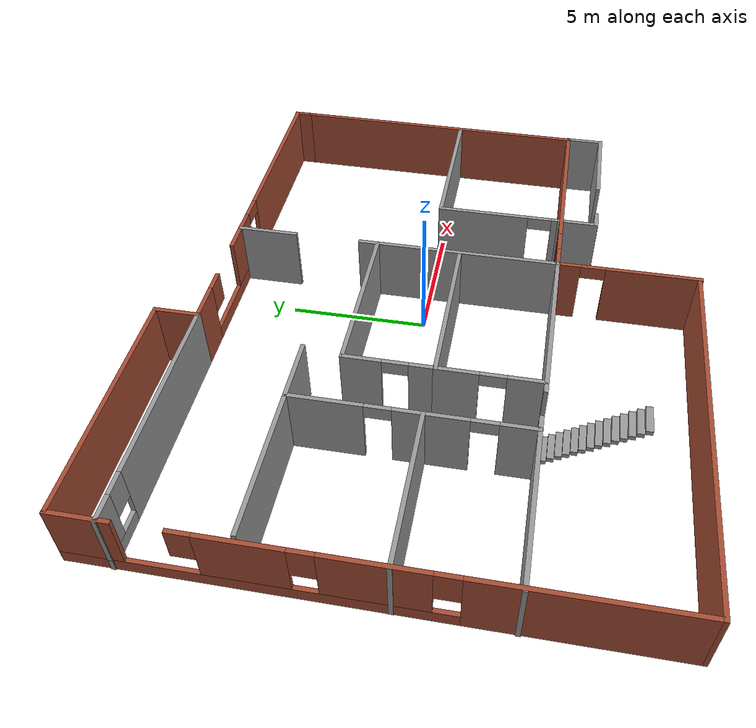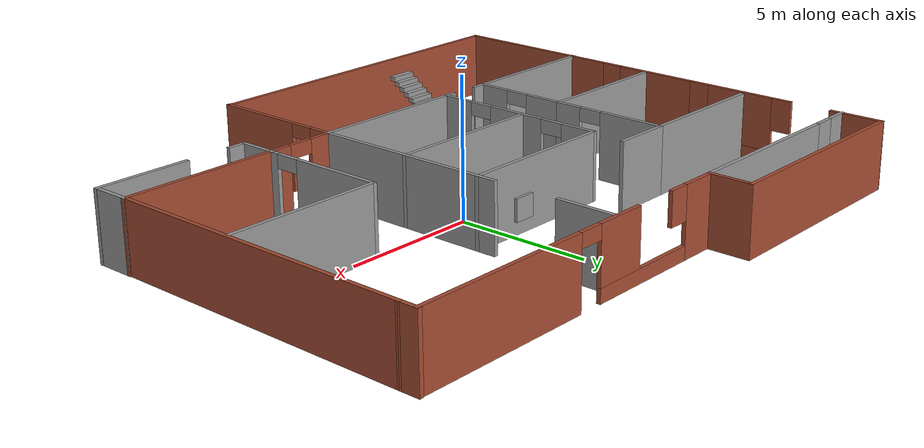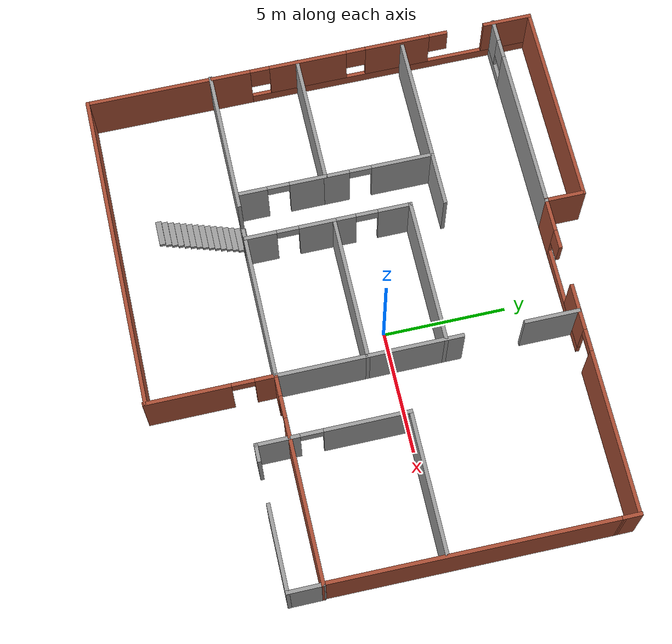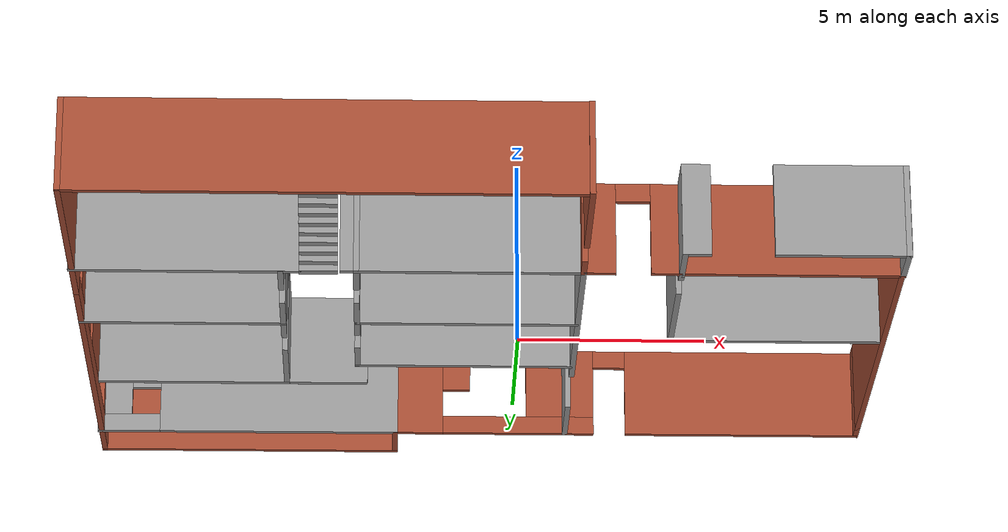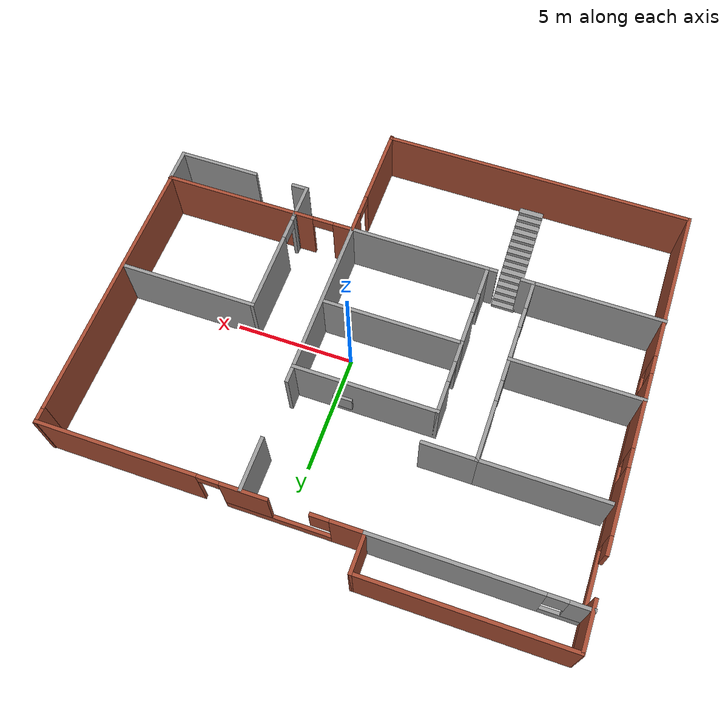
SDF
<?xml version='1.0'?>
<sdf version='1.6'>
  <model name='house'>
    <pose frame=''>-0.883085 -0.440511 0 0 -0 0</pose>
    <link name='Stairs_0'>
      <visual name='Stairs_0_Visual_0'>
        <pose frame=''>-4.36896 -4.16197 0.083333 0 -0 0</pose>
        <geometry>
          <box>
            <size>1 0.233333 0.166667</size>
          </box>
        </geometry>
        <material>
          <script>
            <uri>file://media/materials/scripts/gazebo.material</uri>
            <name>Gazebo/Grey</name>
          </script>
          <ambient>1 1 1 1</ambient>
        </material>
        <meta>
          <layer>0</layer>
        </meta>
      </visual>
      <collision name='Stairs_0_Collision_0'>
        <geometry>
          <box>
            <size>1 0.233333 0.166667</size>
          </box>
        </geometry>
        <pose frame=''>-4.36896 -4.16197 0.083333 0 -0 0</pose>
      </collision>
      <visual name='Stairs_0_Visual_1'>
        <pose frame=''>-4.36896 -4.3953 0.25 0 -0 0</pose>
        <geometry>
          <box>
            <size>1 0.233333 0.166667</size>
          </box>
        </geometry>
        <material>
          <script>
            <uri>file://media/materials/scripts/gazebo.material</uri>
            <name>Gazebo/Grey</name>
          </script>
          <ambient>1 1 1 1</ambient>
        </material>
        <meta>
          <layer>0</layer>
        </meta>
      </visual>
      <collision name='Stairs_0_Collision_1'>
        <geometry>
          <box>
            <size>1 0.233333 0.166667</size>
          </box>
        </geometry>
        <pose frame=''>-4.36896 -4.3953 0.25 0 -0 0</pose>
      </collision>
      <visual name='Stairs_0_Visual_2'>
        <pose frame=''>-4.36896 -4.62864 0.416667 0 -0 0</pose>
        <geometry>
          <box>
            <size>1 0.233333 0.166667</size>
          </box>
        </geometry>
        <material>
          <script>
            <uri>file://media/materials/scripts/gazebo.material</uri>
            <name>Gazebo/Grey</name>
          </script>
          <ambient>1 1 1 1</ambient>
        </material>
        <meta>
          <layer>0</layer>
        </meta>
      </visual>
      <collision name='Stairs_0_Collision_2'>
        <geometry>
          <box>
            <size>1 0.233333 0.166667</size>
          </box>
        </geometry>
        <pose frame=''>-4.36896 -4.62864 0.416667 0 -0 0</pose>
      </collision>
      <visual name='Stairs_0_Visual_3'>
        <pose frame=''>-4.36896 -4.86197 0.583333 0 -0 0</pose>
        <geometry>
          <box>
            <size>1 0.233333 0.166667</size>
          </box>
        </geometry>
        <material>
          <script>
            <uri>file://media/materials/scripts/gazebo.material</uri>
            <name>Gazebo/Grey</name>
          </script>
          <ambient>1 1 1 1</ambient>
        </material>
        <meta>
          <layer>0</layer>
        </meta>
      </visual>
      <collision name='Stairs_0_Collision_3'>
        <geometry>
          <box>
            <size>1 0.233333 0.166667</size>
          </box>
        </geometry>
        <pose frame=''>-4.36896 -4.86197 0.583333 0 -0 0</pose>
      </collision>
      <visual name='Stairs_0_Visual_4'>
        <pose frame=''>-4.36896 -5.0953 0.75 0 -0 0</pose>
        <geometry>
          <box>
            <size>1 0.233333 0.166667</size>
          </box>
        </geometry>
        <material>
          <script>
            <uri>file://media/materials/scripts/gazebo.material</uri>
            <name>Gazebo/Grey</name>
          </script>
          <ambient>1 1 1 1</ambient>
        </material>
        <meta>
          <layer>0</layer>
        </meta>
      </visual>
      <collision name='Stairs_0_Collision_4'>
        <geometry>
          <box>
            <size>1 0.233333 0.166667</size>
          </box>
        </geometry>
        <pose frame=''>-4.36896 -5.0953 0.75 0 -0 0</pose>
      </collision>
      <visual name='Stairs_0_Visual_5'>
        <pose frame=''>-4.36896 -5.32864 0.916667 0 -0 0</pose>
        <geometry>
          <box>
            <size>1 0.233333 0.166667</size>
          </box>
        </geometry>
        <material>
          <script>
            <uri>file://media/materials/scripts/gazebo.material</uri>
            <name>Gazebo/Grey</name>
          </script>
          <ambient>1 1 1 1</ambient>
        </material>
        <meta>
          <layer>0</layer>
        </meta>
      </visual>
      <collision name='Stairs_0_Collision_5'>
        <geometry>
          <box>
            <size>1 0.233333 0.166667</size>
          </box>
        </geometry>
        <pose frame=''>-4.36896 -5.32864 0.916667 0 -0 0</pose>
      </collision>
      <visual name='Stairs_0_Visual_6'>
        <pose frame=''>-4.36896 -5.56197 1.08333 0 -0 0</pose>
        <geometry>
          <box>
            <size>1 0.233333 0.166667</size>
          </box>
        </geometry>
        <material>
          <script>
            <uri>file://media/materials/scripts/gazebo.material</uri>
            <name>Gazebo/Grey</name>
          </script>
          <ambient>1 1 1 1</ambient>
        </material>
        <meta>
          <layer>0</layer>
        </meta>
      </visual>
      <collision name='Stairs_0_Collision_6'>
        <geometry>
          <box>
            <size>1 0.233333 0.166667</size>
          </box>
        </geometry>
        <pose frame=''>-4.36896 -5.56197 1.08333 0 -0 0</pose>
      </collision>
      <visual name='Stairs_0_Visual_7'>
        <pose frame=''>-4.36896 -5.7953 1.25 0 -0 0</pose>
        <geometry>
          <box>
            <size>1 0.233333 0.166667</size>
          </box>
        </geometry>
        <material>
          <script>
            <uri>file://media/materials/scripts/gazebo.material</uri>
            <name>Gazebo/Grey</name>
          </script>
          <ambient>1 1 1 1</ambient>
        </material>
        <meta>
          <layer>0</layer>
        </meta>
      </visual>
      <collision name='Stairs_0_Collision_7'>
        <geometry>
          <box>
            <size>1 0.233333 0.166667</size>
          </box>
        </geometry>
        <pose frame=''>-4.36896 -5.7953 1.25 0 -0 0</pose>
      </collision>
      <visual name='Stairs_0_Visual_8'>
        <pose frame=''>-4.36896 -6.02864 1.41667 0 -0 0</pose>
        <geometry>
          <box>
            <size>1 0.233333 0.166667</size>
          </box>
        </geometry>
        <material>
          <script>
            <uri>file://media/materials/scripts/gazebo.material</uri>
            <name>Gazebo/Grey</name>
          </script>
          <ambient>1 1 1 1</ambient>
        </material>
        <meta>
          <layer>0</layer>
        </meta>
      </visual>
      <collision name='Stairs_0_Collision_8'>
        <geometry>
          <box>
            <size>1 0.233333 0.166667</size>
          </box>
        </geometry>
        <pose frame=''>-4.36896 -6.02864 1.41667 0 -0 0</pose>
      </collision>
      <visual name='Stairs_0_Visual_9'>
        <pose frame=''>-4.36896 -6.26197 1.58333 0 -0 0</pose>
        <geometry>
          <box>
            <size>1 0.233333 0.166667</size>
          </box>
        </geometry>
        <material>
          <script>
            <uri>file://media/materials/scripts/gazebo.material</uri>
            <name>Gazebo/Grey</name>
          </script>
          <ambient>1 1 1 1</ambient>
        </material>
        <meta>
          <layer>0</layer>
        </meta>
      </visual>
      <collision name='Stairs_0_Collision_9'>
        <geometry>
          <box>
            <size>1 0.233333 0.166667</size>
          </box>
        </geometry>
        <pose frame=''>-4.36896 -6.26197 1.58333 0 -0 0</pose>
      </collision>
      <visual name='Stairs_0_Visual_10'>
        <pose frame=''>-4.36896 -6.4953 1.75 0 -0 0</pose>
        <geometry>
          <box>
            <size>1 0.233333 0.166667</size>
          </box>
        </geometry>
        <material>
          <script>
            <uri>file://media/materials/scripts/gazebo.material</uri>
            <name>Gazebo/Grey</name>
          </script>
          <ambient>1 1 1 1</ambient>
        </material>
        <meta>
          <layer>0</layer>
        </meta>
      </visual>
      <collision name='Stairs_0_Collision_10'>
        <geometry>
          <box>
            <size>1 0.233333 0.166667</size>
          </box>
        </geometry>
        <pose frame=''>-4.36896 -6.4953 1.75 0 -0 0</pose>
      </collision>
      <visual name='Stairs_0_Visual_11'>
        <pose frame=''>-4.36896 -6.72864 1.91667 0 -0 0</pose>
        <geometry>
          <box>
            <size>1 0.233333 0.166667</size>
          </box>
        </geometry>
        <material>
          <script>
            <uri>file://media/materials/scripts/gazebo.material</uri>
            <name>Gazebo/Grey</name>
          </script>
          <ambient>1 1 1 1</ambient>
        </material>
        <meta>
          <layer>0</layer>
        </meta>
      </visual>
      <collision name='Stairs_0_Collision_11'>
        <geometry>
          <box>
            <size>1 0.233333 0.166667</size>
          </box>
        </geometry>
        <pose frame=''>-4.36896 -6.72864 1.91667 0 -0 0</pose>
      </collision>
      <visual name='Stairs_0_Visual_12'>
        <pose frame=''>-4.36896 -6.96197 2.08333 0 -0 0</pose>
        <geometry>
          <box>
            <size>1 0.233333 0.166667</size>
          </box>
        </geometry>
        <material>
          <script>
            <uri>file://media/materials/scripts/gazebo.material</uri>
            <name>Gazebo/Grey</name>
          </script>
          <ambient>1 1 1 1</ambient>
        </material>
        <meta>
          <layer>0</layer>
        </meta>
      </visual>
      <collision name='Stairs_0_Collision_12'>
        <geometry>
          <box>
            <size>1 0.233333 0.166667</size>
          </box>
        </geometry>
        <pose frame=''>-4.36896 -6.96197 2.08333 0 -0 0</pose>
      </collision>
      <visual name='Stairs_0_Visual_13'>
        <pose frame=''>-4.36896 -7.1953 2.25 0 -0 0</pose>
        <geometry>
          <box>
            <size>1 0.233333 0.166667</size>
          </box>
        </geometry>
        <material>
          <script>
            <uri>file://media/materials/scripts/gazebo.material</uri>
            <name>Gazebo/Grey</name>
          </script>
          <ambient>1 1 1 1</ambient>
        </material>
        <meta>
          <layer>0</layer>
        </meta>
      </visual>
      <collision name='Stairs_0_Collision_13'>
        <geometry>
          <box>
            <size>1 0.233333 0.166667</size>
          </box>
        </geometry>
        <pose frame=''>-4.36896 -7.1953 2.25 0 -0 0</pose>
      </collision>
      <visual name='Stairs_0_Visual_14'>
        <pose frame=''>-4.36896 -7.42864 2.41667 0 -0 0</pose>
        <geometry>
          <box>
            <size>1 0.233333 0.166667</size>
          </box>
        </geometry>
        <material>
          <script>
            <uri>file://media/materials/scripts/gazebo.material</uri>
            <name>Gazebo/Grey</name>
          </script>
          <ambient>1 1 1 1</ambient>
        </material>
        <meta>
          <layer>0</layer>
        </meta>
      </visual>
      <collision name='Stairs_0_Collision_14'>
        <geometry>
          <box>
            <size>1 0.233333 0.166667</size>
          </box>
        </geometry>
        <pose frame=''>-4.36896 -7.42864 2.41667 0 -0 0</pose>
      </collision>
    </link>
    <link name='Wall_12'>
      <pose frame=''>6.56357 -4.2076 0 0 0 -3.13773</pose>
      <visual name='Wall_12_Visual_0'>
        <pose frame=''>-0.905171 0 1.25 0 -0 0</pose>
        <geometry>
          <box>
            <size>6.57272 0.15 2.5</size>
          </box>
        </geometry>
        <material>
          <script>
            <uri>file://media/materials/scripts/gazebo.material</uri>
            <name>Gazebo/Bricks</name>
          </script>
          <ambient>1 1 1 1</ambient>
        </material>
        <meta>
          <layer>0</layer>
        </meta>
      </visual>
      <collision name='Wall_12_Collision_0'>
        <geometry>
          <box>
            <size>6.57272 0.15 2.5</size>
          </box>
        </geometry>
        <pose frame=''>-0.905171 0 1.25 0 -0 0</pose>
      </collision>
      <visual name='Wall_12_Visual_1'>
        <pose frame=''>3.73636 0 1.25 0 -0 0</pose>
        <geometry>
          <box>
            <size>0.910342 0.15 2.5</size>
          </box>
        </geometry>
        <material>
          <script>
            <uri>file://media/materials/scripts/gazebo.material</uri>
            <name>Gazebo/Bricks</name>
          </script>
          <ambient>1 1 1 1</ambient>
        </material>
        <meta>
          <layer>0</layer>
        </meta>
      </visual>
      <collision name='Wall_12_Collision_1'>
        <geometry>
          <box>
            <size>0.910342 0.15 2.5</size>
          </box>
        </geometry>
        <pose frame=''>3.73636 0 1.25 0 -0 0</pose>
      </collision>
      <visual name='Wall_12_Visual_2'>
        <pose frame=''>2.83119 0 2.25 0 -0 0</pose>
        <geometry>
          <box>
            <size>0.9 0.15 0.5</size>
          </box>
        </geometry>
        <material>
          <script>
            <uri>file://media/materials/scripts/gazebo.material</uri>
            <name>Gazebo/Bricks</name>
          </script>
          <ambient>1 1 1 1</ambient>
        </material>
        <meta>
          <layer>0</layer>
        </meta>
      </visual>
      <collision name='Wall_12_Collision_2'>
        <geometry>
          <box>
            <size>0.9 0.15 0.5</size>
          </box>
        </geometry>
        <pose frame=''>2.83119 0 2.25 0 -0 0</pose>
      </collision>
    </link>
    <link name='Wall_14'>
      <collision name='Wall_14_Collision'>
        <geometry>
          <box>
            <size>13.25 0.15 2.5</size>
          </box>
        </geometry>
        <pose frame=''>0 0 1.25 0 -0 0</pose>
      </collision>
      <visual name='Wall_14_Visual'>
        <pose frame=''>0 0 1.25 0 -0 0</pose>
        <geometry>
          <box>
            <size>13.25 0.15 2.5</size>
          </box>
        </geometry>
        <material>
          <script>
            <uri>file://media/materials/scripts/gazebo.material</uri>
            <name>Gazebo/Bricks</name>
          </script>
          <ambient>1 1 1 1</ambient>
        </material>
        <meta>
          <layer>0</layer>
        </meta>
      </visual>
      <pose frame=''>-4.13915 -9.27651 0 0 -0 3.14159</pose>
    </link>
    <link name='Wall_15'>
      <pose frame=''>-10.6891 0.023489 0 0 -0 1.5708</pose>
      <visual name='Wall_15_Visual_0'>
        <pose frame=''>-5.96425 0 1.25 0 -0 0</pose>
        <geometry>
          <box>
            <size>6.82149 0.15 2.5</size>
          </box>
        </geometry>
        <material>
          <script>
            <uri>file://media/materials/scripts/gazebo.material</uri>
            <name>Gazebo/Bricks</name>
          </script>
          <ambient>1 1 1 1</ambient>
        </material>
        <meta>
          <layer>0</layer>
        </meta>
      </visual>
      <collision name='Wall_15_Collision_0'>
        <geometry>
          <box>
            <size>6.82149 0.15 2.5</size>
          </box>
        </geometry>
        <pose frame=''>-5.96425 0 1.25 0 -0 0</pose>
      </collision>
      <visual name='Wall_15_Visual_1'>
        <pose frame=''>3.41075 0 0.25 0 -0 0</pose>
        <geometry>
          <box>
            <size>11.9285 0.15 0.5</size>
          </box>
        </geometry>
        <material>
          <script>
            <uri>file://media/materials/scripts/gazebo.material</uri>
            <name>Gazebo/Bricks</name>
          </script>
          <ambient>1 1 1 1</ambient>
        </material>
        <meta>
          <layer>0</layer>
        </meta>
      </visual>
      <collision name='Wall_15_Collision_1'>
        <geometry>
          <box>
            <size>11.9285 0.15 0.5</size>
          </box>
        </geometry>
        <pose frame=''>3.41075 0 0.25 0 -0 0</pose>
      </collision>
      <visual name='Wall_15_Visual_2'>
        <pose frame=''>-0.130742 0 1.5 0 -0 0</pose>
        <geometry>
          <box>
            <size>3.24553 0.15 2</size>
          </box>
        </geometry>
        <material>
          <script>
            <uri>file://media/materials/scripts/gazebo.material</uri>
            <name>Gazebo/Bricks</name>
          </script>
          <ambient>1 1 1 1</ambient>
        </material>
        <meta>
          <layer>0</layer>
        </meta>
      </visual>
      <collision name='Wall_15_Collision_2'>
        <geometry>
          <box>
            <size>3.24553 0.15 2</size>
          </box>
        </geometry>
        <pose frame=''>-0.130742 0 1.5 0 -0 0</pose>
      </collision>
      <visual name='Wall_15_Visual_3'>
        <pose frame=''>3.64863 0 1.5 0 -0 0</pose>
        <geometry>
          <box>
            <size>2.71322 0.15 2</size>
          </box>
        </geometry>
        <material>
          <script>
            <uri>file://media/materials/scripts/gazebo.material</uri>
            <name>Gazebo/Bricks</name>
          </script>
          <ambient>1 1 1 1</ambient>
        </material>
        <meta>
          <layer>0</layer>
        </meta>
      </visual>
      <collision name='Wall_15_Collision_3'>
        <geometry>
          <box>
            <size>2.71322 0.15 2</size>
          </box>
        </geometry>
        <pose frame=''>3.64863 0 1.5 0 -0 0</pose>
      </collision>
      <visual name='Wall_15_Visual_4'>
        <pose frame=''>8.35056 0 1.5 0 -0 0</pose>
        <geometry>
          <box>
            <size>2.04888 0.15 2</size>
          </box>
        </geometry>
        <material>
          <script>
            <uri>file://media/materials/scripts/gazebo.material</uri>
            <name>Gazebo/Bricks</name>
          </script>
          <ambient>1 1 1 1</ambient>
        </material>
        <meta>
          <layer>0</layer>
        </meta>
      </visual>
      <collision name='Wall_15_Collision_4'>
        <geometry>
          <box>
            <size>2.04888 0.15 2</size>
          </box>
        </geometry>
        <pose frame=''>8.35056 0 1.5 0 -0 0</pose>
      </collision>
      <visual name='Wall_15_Visual_5'>
        <pose frame=''>-2.15351 0 1.9 0 -0 0</pose>
        <geometry>
          <box>
            <size>0.8 0.15 1.2</size>
          </box>
        </geometry>
        <material>
          <script>
            <uri>file://media/materials/scripts/gazebo.material</uri>
            <name>Gazebo/Bricks</name>
          </script>
          <ambient>1 1 1 1</ambient>
        </material>
        <meta>
          <layer>0</layer>
        </meta>
      </visual>
      <collision name='Wall_15_Collision_5'>
        <geometry>
          <box>
            <size>0.8 0.15 1.2</size>
          </box>
        </geometry>
        <pose frame=''>-2.15351 0 1.9 0 -0 0</pose>
      </collision>
      <visual name='Wall_15_Visual_6'>
        <pose frame=''>1.89202 0 1.9 0 -0 0</pose>
        <geometry>
          <box>
            <size>0.8 0.15 1.2</size>
          </box>
        </geometry>
        <material>
          <script>
            <uri>file://media/materials/scripts/gazebo.material</uri>
            <name>Gazebo/Bricks</name>
          </script>
          <ambient>1 1 1 1</ambient>
        </material>
        <meta>
          <layer>0</layer>
        </meta>
      </visual>
      <collision name='Wall_15_Collision_6'>
        <geometry>
          <box>
            <size>0.8 0.15 1.2</size>
          </box>
        </geometry>
        <pose frame=''>1.89202 0 1.9 0 -0 0</pose>
      </collision>
      <visual name='Wall_15_Visual_7'>
        <pose frame=''>5.39307 0 1.9 0 -0 0</pose>
        <geometry>
          <box>
            <size>0.775646 0.15 1.2</size>
          </box>
        </geometry>
        <material>
          <script>
            <uri>file://media/materials/scripts/gazebo.material</uri>
            <name>Gazebo/Bricks</name>
          </script>
          <ambient>1 1 1 1</ambient>
        </material>
        <meta>
          <layer>0</layer>
        </meta>
      </visual>
      <collision name='Wall_15_Collision_7'>
        <geometry>
          <box>
            <size>0.775646 0.15 1.2</size>
          </box>
        </geometry>
        <pose frame=''>5.39307 0 1.9 0 -0 0</pose>
      </collision>
    </link>
    <link name='Wall_16'>
      <collision name='Wall_16_Collision'>
        <geometry>
          <box>
            <size>8.42964 0.15 2.5</size>
          </box>
        </geometry>
        <pose frame=''>0 0 1.25 0 -0 0</pose>
      </collision>
      <visual name='Wall_16_Visual'>
        <pose frame=''>0 0 1.25 0 -0 0</pose>
        <geometry>
          <box>
            <size>8.42964 0.15 2.5</size>
          </box>
        </geometry>
        <material>
          <script>
            <uri>file://media/materials/scripts/gazebo.material</uri>
            <name>Gazebo/Bricks</name>
          </script>
          <ambient>1 1 1 1</ambient>
        </material>
        <meta>
          <layer>0</layer>
        </meta>
      </visual>
      <pose frame=''>-6.51415 9.32349 0 0 -0 0</pose>
    </link>
    <link name='Wall_17'>
      <collision name='Wall_17_Collision'>
        <geometry>
          <box>
            <size>1.65748 0.15 2.5</size>
          </box>
        </geometry>
        <pose frame=''>0 0 1.25 0 -0 0</pose>
      </collision>
      <visual name='Wall_17_Visual'>
        <pose frame=''>0 0 1.25 0 -0 0</pose>
        <geometry>
          <box>
            <size>1.65748 0.15 2.5</size>
          </box>
        </geometry>
        <material>
          <script>
            <uri>file://media/materials/scripts/gazebo.material</uri>
            <name>Gazebo/Bricks</name>
          </script>
          <ambient>1 1 1 1</ambient>
        </material>
        <meta>
          <layer>0</layer>
        </meta>
      </visual>
      <pose frame=''>-2.37433 8.56975 0 0 0 -1.5708</pose>
    </link>
    <link name='Wall_18'>
      <pose frame=''>4.17567 7.79288 0 0 -0 0</pose>
      <visual name='Wall_18_Visual_0'>
        <pose frame=''>-5.91197 0 1.25 0 -0 0</pose>
        <geometry>
          <box>
            <size>1.42605 0.15 2.5</size>
          </box>
        </geometry>
        <material>
          <script>
            <uri>file://media/materials/scripts/gazebo.material</uri>
            <name>Gazebo/Bricks</name>
          </script>
          <ambient>1 1 1 1</ambient>
        </material>
        <meta>
          <layer>0</layer>
        </meta>
      </visual>
      <collision name='Wall_18_Collision_0'>
        <geometry>
          <box>
            <size>1.42605 0.15 2.5</size>
          </box>
        </geometry>
        <pose frame=''>-5.91197 0 1.25 0 -0 0</pose>
      </collision>
      <visual name='Wall_18_Visual_1'>
        <pose frame=''>3.30625 0 1.25 0 -0 0</pose>
        <geometry>
          <box>
            <size>6.63751 0.15 2.5</size>
          </box>
        </geometry>
        <material>
          <script>
            <uri>file://media/materials/scripts/gazebo.material</uri>
            <name>Gazebo/Bricks</name>
          </script>
          <ambient>1 1 1 1</ambient>
        </material>
        <meta>
          <layer>0</layer>
        </meta>
      </visual>
      <collision name='Wall_18_Collision_1'>
        <geometry>
          <box>
            <size>6.63751 0.15 2.5</size>
          </box>
        </geometry>
        <pose frame=''>3.30625 0 1.25 0 -0 0</pose>
      </collision>
      <visual name='Wall_18_Visual_2'>
        <pose frame=''>-3.05573 0 0.25 0 -0 0</pose>
        <geometry>
          <box>
            <size>4.28644 0.15 0.5</size>
          </box>
        </geometry>
        <material>
          <script>
            <uri>file://media/materials/scripts/gazebo.material</uri>
            <name>Gazebo/Bricks</name>
          </script>
          <ambient>1 1 1 1</ambient>
        </material>
        <meta>
          <layer>0</layer>
        </meta>
      </visual>
      <collision name='Wall_18_Collision_2'>
        <geometry>
          <box>
            <size>4.28644 0.15 0.5</size>
          </box>
        </geometry>
        <pose frame=''>-3.05573 0 0.25 0 -0 0</pose>
      </collision>
      <visual name='Wall_18_Visual_3'>
        <pose frame=''>-1.87248 0 1.5 0 -0 0</pose>
        <geometry>
          <box>
            <size>1.91994 0.15 2</size>
          </box>
        </geometry>
        <material>
          <script>
            <uri>file://media/materials/scripts/gazebo.material</uri>
            <name>Gazebo/Bricks</name>
          </script>
          <ambient>1 1 1 1</ambient>
        </material>
        <meta>
          <layer>0</layer>
        </meta>
      </visual>
      <collision name='Wall_18_Collision_3'>
        <geometry>
          <box>
            <size>1.91994 0.15 2</size>
          </box>
        </geometry>
        <pose frame=''>-1.87248 0 1.5 0 -0 0</pose>
      </collision>
      <visual name='Wall_18_Visual_4'>
        <pose frame=''>-4.81112 0 1.9 0 -0 0</pose>
        <geometry>
          <box>
            <size>0.775646 0.15 1.2</size>
          </box>
        </geometry>
        <material>
          <script>
            <uri>file://media/materials/scripts/gazebo.material</uri>
            <name>Gazebo/Bricks</name>
          </script>
          <ambient>1 1 1 1</ambient>
        </material>
        <meta>
          <layer>0</layer>
        </meta>
      </visual>
      <collision name='Wall_18_Collision_4'>
        <geometry>
          <box>
            <size>0.775646 0.15 1.2</size>
          </box>
        </geometry>
        <pose frame=''>-4.81112 0 1.9 0 -0 0</pose>
      </collision>
      <visual name='Wall_18_Visual_5'>
        <pose frame=''>-0.462507 0 2.25 0 -0 0</pose>
        <geometry>
          <box>
            <size>0.9 0.15 0.5</size>
          </box>
        </geometry>
        <material>
          <script>
            <uri>file://media/materials/scripts/gazebo.material</uri>
            <name>Gazebo/Bricks</name>
          </script>
          <ambient>1 1 1 1</ambient>
        </material>
        <meta>
          <layer>0</layer>
        </meta>
      </visual>
      <collision name='Wall_18_Collision_5'>
        <geometry>
          <box>
            <size>0.9 0.15 0.5</size>
          </box>
        </geometry>
        <pose frame=''>-0.462507 0 2.25 0 -0 0</pose>
      </collision>
    </link>
    <link name='Wall_19'>
      <collision name='Wall_19_Collision'>
        <geometry>
          <box>
            <size>0.792522 0.15 2.5</size>
          </box>
        </geometry>
        <pose frame=''>0 0 1.25 0 -0 0</pose>
      </collision>
      <visual name='Wall_19_Visual'>
        <pose frame=''>0 0 1.25 0 -0 0</pose>
        <geometry>
          <box>
            <size>0.792522 0.15 2.5</size>
          </box>
        </geometry>
        <material>
          <script>
            <uri>file://media/materials/scripts/gazebo.material</uri>
            <name>Gazebo/Bricks</name>
          </script>
          <ambient>1 1 1 1</ambient>
        </material>
        <meta>
          <layer>0</layer>
        </meta>
      </visual>
      <pose frame=''>10.7257 7.49475 0 0 0 -1.5708</pose>
    </link>
    <link name='Wall_21'>
      <pose frame=''>4.97689 -1.83191 0 0 -0 1.5708</pose>
      <visual name='Wall_21_Visual_0'>
        <pose frame=''>-2.18439 0 1.25 0 -0 0</pose>
        <geometry>
          <box>
            <size>0.381215 0.15 2.5</size>
          </box>
        </geometry>
        <material>
          <script>
            <uri>file://media/materials/scripts/gazebo.material</uri>
            <name>Gazebo/Grey</name>
          </script>
          <ambient>1 1 1 1</ambient>
        </material>
        <meta>
          <layer>0</layer>
        </meta>
      </visual>
      <collision name='Wall_21_Collision_0'>
        <geometry>
          <box>
            <size>0.381215 0.15 2.5</size>
          </box>
        </geometry>
        <pose frame=''>-2.18439 0 1.25 0 -0 0</pose>
      </collision>
      <visual name='Wall_21_Visual_1'>
        <pose frame=''>0.640608 0 1.25 0 -0 0</pose>
        <geometry>
          <box>
            <size>3.46879 0.15 2.5</size>
          </box>
        </geometry>
        <material>
          <script>
            <uri>file://media/materials/scripts/gazebo.material</uri>
            <name>Gazebo/Grey</name>
          </script>
          <ambient>1 1 1 1</ambient>
        </material>
        <meta>
          <layer>0</layer>
        </meta>
      </visual>
      <collision name='Wall_21_Collision_1'>
        <geometry>
          <box>
            <size>3.46879 0.15 2.5</size>
          </box>
        </geometry>
        <pose frame=''>0.640608 0 1.25 0 -0 0</pose>
      </collision>
      <visual name='Wall_21_Visual_2'>
        <pose frame=''>-1.54378 0 2.25 0 -0 0</pose>
        <geometry>
          <box>
            <size>0.9 0.15 0.5</size>
          </box>
        </geometry>
        <material>
          <script>
            <uri>file://media/materials/scripts/gazebo.material</uri>
            <name>Gazebo/Grey</name>
          </script>
          <ambient>1 1 1 1</ambient>
        </material>
        <meta>
          <layer>0</layer>
        </meta>
      </visual>
      <collision name='Wall_21_Collision_2'>
        <geometry>
          <box>
            <size>0.9 0.15 0.5</size>
          </box>
        </geometry>
        <pose frame=''>-1.54378 0 2.25 0 -0 0</pose>
      </collision>
    </link>
    <link name='Wall_22'>
      <collision name='Wall_22_Collision'>
        <geometry>
          <box>
            <size>5.75 0.15 2.5</size>
          </box>
        </geometry>
        <pose frame=''>0 0 1.25 0 -0 0</pose>
      </collision>
      <visual name='Wall_22_Visual'>
        <pose frame=''>0 0 1.25 0 -0 0</pose>
        <geometry>
          <box>
            <size>5.75 0.15 2.5</size>
          </box>
        </geometry>
        <material>
          <script>
            <uri>file://media/materials/scripts/gazebo.material</uri>
            <name>Gazebo/Grey</name>
          </script>
          <ambient>1 1 1 1</ambient>
        </material>
        <meta>
          <layer>0</layer>
        </meta>
      </visual>
      <pose frame=''>7.77689 0.468088 0 0 -0 0</pose>
    </link>
    <link name='Wall_24'>
      <collision name='Wall_24_Collision'>
        <geometry>
          <box>
            <size>7.5 0.15 2.5</size>
          </box>
        </geometry>
        <pose frame=''>0 0 1.25 0 -0 0</pose>
      </collision>
      <visual name='Wall_24_Visual'>
        <pose frame=''>0 0 1.25 0 -0 0</pose>
        <geometry>
          <box>
            <size>7.5 0.15 2.5</size>
          </box>
        </geometry>
        <material>
          <script>
            <uri>file://media/materials/scripts/gazebo.material</uri>
            <name>Gazebo/Grey</name>
          </script>
          <ambient>1 1 1 1</ambient>
        </material>
        <meta>
          <layer>0</layer>
        </meta>
      </visual>
      <pose frame=''>2.44708 -0.548489 0 0 -0 1.5708</pose>
    </link>
    <link name='Wall_29'>
      <collision name='Wall_29_Collision'>
        <geometry>
          <box>
            <size>2.25 0.15 2.5</size>
          </box>
        </geometry>
        <pose frame=''>0 0 1.25 0 -0 0</pose>
      </collision>
      <visual name='Wall_29_Visual'>
        <pose frame=''>0 0 1.25 0 -0 0</pose>
        <geometry>
          <box>
            <size>2.25 0.15 2.5</size>
          </box>
        </geometry>
        <material>
          <script>
            <uri>file://media/materials/scripts/gazebo.material</uri>
            <name>Gazebo/Grey</name>
          </script>
          <ambient>1 1 1 1</ambient>
        </material>
        <meta>
          <layer>0</layer>
        </meta>
      </visual>
      <pose frame=''>2.44533 6.70791 0 0 0 -1.5708</pose>
    </link>
    <link name='Wall_31'>
      <pose frame=''>2.44708 -6.77349 0 0 0 -1.5708</pose>
      <visual name='Wall_31_Visual_0'>
        <pose frame=''>-2.17375 0 1.25 0 -0 0</pose>
        <geometry>
          <box>
            <size>0.902493 0.15 2.5</size>
          </box>
        </geometry>
        <material>
          <script>
            <uri>file://media/materials/scripts/gazebo.material</uri>
            <name>Gazebo/Bricks</name>
          </script>
          <ambient>1 1 1 1</ambient>
        </material>
        <meta>
          <layer>0</layer>
        </meta>
      </visual>
      <collision name='Wall_31_Collision_0'>
        <geometry>
          <box>
            <size>0.902493 0.15 2.5</size>
          </box>
        </geometry>
        <pose frame=''>-2.17375 0 1.25 0 -0 0</pose>
      </collision>
      <visual name='Wall_31_Visual_1'>
        <pose frame=''>0.901247 0 1.25 0 -0 0</pose>
        <geometry>
          <box>
            <size>3.44751 0.15 2.5</size>
          </box>
        </geometry>
        <material>
          <script>
            <uri>file://media/materials/scripts/gazebo.material</uri>
            <name>Gazebo/Bricks</name>
          </script>
          <ambient>1 1 1 1</ambient>
        </material>
        <meta>
          <layer>0</layer>
        </meta>
      </visual>
      <collision name='Wall_31_Collision_1'>
        <geometry>
          <box>
            <size>3.44751 0.15 2.5</size>
          </box>
        </geometry>
        <pose frame=''>0.901247 0 1.25 0 -0 0</pose>
      </collision>
      <visual name='Wall_31_Visual_2'>
        <pose frame=''>-1.27251 0 2.25 0 -0 0</pose>
        <geometry>
          <box>
            <size>0.9 0.15 0.5</size>
          </box>
        </geometry>
        <material>
          <script>
            <uri>file://media/materials/scripts/gazebo.material</uri>
            <name>Gazebo/Bricks</name>
          </script>
          <ambient>1 1 1 1</ambient>
        </material>
        <meta>
          <layer>0</layer>
        </meta>
      </visual>
      <collision name='Wall_31_Collision_2'>
        <geometry>
          <box>
            <size>0.9 0.15 0.5</size>
          </box>
        </geometry>
        <pose frame=''>-1.27251 0 2.25 0 -0 0</pose>
      </collision>
    </link>
    <link name='Wall_34'>
      <collision name='Wall_34_Collision'>
        <geometry>
          <box>
            <size>6 0.15 2.5</size>
          </box>
        </geometry>
        <pose frame=''>0 0 1.25 0 -0 0</pose>
      </collision>
      <visual name='Wall_34_Visual'>
        <pose frame=''>0 0 1.25 0 -0 0</pose>
        <geometry>
          <box>
            <size>6 0.15 2.5</size>
          </box>
        </geometry>
        <material>
          <script>
            <uri>file://media/materials/scripts/gazebo.material</uri>
            <name>Gazebo/Grey</name>
          </script>
          <ambient>1 1 1 1</ambient>
        </material>
        <meta>
          <layer>0</layer>
        </meta>
      </visual>
      <pose frame=''>-0.477915 -4.22349 0 0 -0 3.14159</pose>
    </link>
    <link name='Wall_35'>
      <pose frame=''>-3.40292 -2.42349 0 0 -0 1.5708</pose>
      <visual name='Wall_35_Visual_0'>
        <pose frame=''>-1.20607 0 1.25 0 -0 0</pose>
        <geometry>
          <box>
            <size>1.33787 0.15 2.5</size>
          </box>
        </geometry>
        <material>
          <script>
            <uri>file://media/materials/scripts/gazebo.material</uri>
            <name>Gazebo/Grey</name>
          </script>
          <ambient>1 1 1 1</ambient>
        </material>
        <meta>
          <layer>0</layer>
        </meta>
      </visual>
      <collision name='Wall_35_Collision_0'>
        <geometry>
          <box>
            <size>1.33787 0.15 2.5</size>
          </box>
        </geometry>
        <pose frame=''>-1.20607 0 1.25 0 -0 0</pose>
      </collision>
      <visual name='Wall_35_Visual_1'>
        <pose frame=''>1.11893 0 1.25 0 -0 0</pose>
        <geometry>
          <box>
            <size>1.51213 0.15 2.5</size>
          </box>
        </geometry>
        <material>
          <script>
            <uri>file://media/materials/scripts/gazebo.material</uri>
            <name>Gazebo/Grey</name>
          </script>
          <ambient>1 1 1 1</ambient>
        </material>
        <meta>
          <layer>0</layer>
        </meta>
      </visual>
      <collision name='Wall_35_Collision_1'>
        <geometry>
          <box>
            <size>1.51213 0.15 2.5</size>
          </box>
        </geometry>
        <pose frame=''>1.11893 0 1.25 0 -0 0</pose>
      </collision>
      <visual name='Wall_35_Visual_2'>
        <pose frame=''>-0.087134 0 2.25 0 -0 0</pose>
        <geometry>
          <box>
            <size>0.9 0.15 0.5</size>
          </box>
        </geometry>
        <material>
          <script>
            <uri>file://media/materials/scripts/gazebo.material</uri>
            <name>Gazebo/Grey</name>
          </script>
          <ambient>1 1 1 1</ambient>
        </material>
        <meta>
          <layer>0</layer>
        </meta>
      </visual>
      <collision name='Wall_35_Collision_2'>
        <geometry>
          <box>
            <size>0.9 0.15 0.5</size>
          </box>
        </geometry>
        <pose frame=''>-0.087134 0 2.25 0 -0 0</pose>
      </collision>
    </link>
    <link name='Wall_36'>
      <collision name='Wall_36_Collision'>
        <geometry>
          <box>
            <size>6 0.15 2.5</size>
          </box>
        </geometry>
        <pose frame=''>0 0 1.25 0 -0 0</pose>
      </collision>
      <visual name='Wall_36_Visual'>
        <pose frame=''>0 0 1.25 0 -0 0</pose>
        <geometry>
          <box>
            <size>6 0.15 2.5</size>
          </box>
        </geometry>
        <material>
          <script>
            <uri>file://media/materials/scripts/gazebo.material</uri>
            <name>Gazebo/Grey</name>
          </script>
          <ambient>1 1 1 1</ambient>
        </material>
        <meta>
          <layer>0</layer>
        </meta>
      </visual>
      <pose frame=''>-0.477915 -0.623489 0 0 -0 0</pose>
    </link>
    <link name='Wall_38'>
      <pose frame=''>-3.40292 0.926511 0 0 -0 1.5708</pose>
      <visual name='Wall_38_Visual_0'>
        <pose frame=''>-1.15008 0 1.25 0 -0 0</pose>
        <geometry>
          <box>
            <size>0.94984 0.15 2.5</size>
          </box>
        </geometry>
        <material>
          <script>
            <uri>file://media/materials/scripts/gazebo.material</uri>
            <name>Gazebo/Grey</name>
          </script>
          <ambient>1 1 1 1</ambient>
        </material>
        <meta>
          <layer>0</layer>
        </meta>
      </visual>
      <collision name='Wall_38_Collision_0'>
        <geometry>
          <box>
            <size>0.94984 0.15 2.5</size>
          </box>
        </geometry>
        <pose frame=''>-1.15008 0 1.25 0 -0 0</pose>
      </collision>
      <visual name='Wall_38_Visual_1'>
        <pose frame=''>0.92492 0 1.25 0 -0 0</pose>
        <geometry>
          <box>
            <size>1.40016 0.15 2.5</size>
          </box>
        </geometry>
        <material>
          <script>
            <uri>file://media/materials/scripts/gazebo.material</uri>
            <name>Gazebo/Grey</name>
          </script>
          <ambient>1 1 1 1</ambient>
        </material>
        <meta>
          <layer>0</layer>
        </meta>
      </visual>
      <collision name='Wall_38_Collision_1'>
        <geometry>
          <box>
            <size>1.40016 0.15 2.5</size>
          </box>
        </geometry>
        <pose frame=''>0.92492 0 1.25 0 -0 0</pose>
      </collision>
      <visual name='Wall_38_Visual_2'>
        <pose frame=''>-0.22516 0 2.25 0 -0 0</pose>
        <geometry>
          <box>
            <size>0.9 0.15 0.5</size>
          </box>
        </geometry>
        <material>
          <script>
            <uri>file://media/materials/scripts/gazebo.material</uri>
            <name>Gazebo/Grey</name>
          </script>
          <ambient>1 1 1 1</ambient>
        </material>
        <meta>
          <layer>0</layer>
        </meta>
      </visual>
      <collision name='Wall_38_Collision_2'>
        <geometry>
          <box>
            <size>0.9 0.15 0.5</size>
          </box>
        </geometry>
        <pose frame=''>-0.22516 0 2.25 0 -0 0</pose>
      </collision>
    </link>
    <link name='Wall_39'>
      <collision name='Wall_39_Collision'>
        <geometry>
          <box>
            <size>6 0.15 2.5</size>
          </box>
        </geometry>
        <pose frame=''>0 0 1.25 0 -0 0</pose>
      </collision>
      <visual name='Wall_39_Visual'>
        <pose frame=''>0 0 1.25 0 -0 0</pose>
        <geometry>
          <box>
            <size>6 0.15 2.5</size>
          </box>
        </geometry>
        <material>
          <script>
            <uri>file://media/materials/scripts/gazebo.material</uri>
            <name>Gazebo/Grey</name>
          </script>
          <ambient>1 1 1 1</ambient>
        </material>
        <meta>
          <layer>0</layer>
        </meta>
      </visual>
      <pose frame=''>-0.477915 2.47651 0 0 -0 0</pose>
    </link>
    <link name='Wall_41'>
      <collision name='Wall_41_Collision'>
        <geometry>
          <box>
            <size>0.5 0.15 2.5</size>
          </box>
        </geometry>
        <pose frame=''>0 0 1.25 0 -0 0</pose>
      </collision>
      <visual name='Wall_41_Visual'>
        <pose frame=''>0 0 1.25 0 -0 0</pose>
        <geometry>
          <box>
            <size>0.5 0.15 2.5</size>
          </box>
        </geometry>
        <material>
          <script>
            <uri>file://media/materials/scripts/gazebo.material</uri>
            <name>Gazebo/Grey</name>
          </script>
          <ambient>1 1 1 1</ambient>
        </material>
        <meta>
          <layer>0</layer>
        </meta>
      </visual>
      <pose frame=''>-3.57791 -4.22349 0 0 -0 3.14159</pose>
    </link>
    <link name='Wall_43'>
      <collision name='Wall_43_Collision'>
        <geometry>
          <box>
            <size>6 0.15 2.5</size>
          </box>
        </geometry>
        <pose frame=''>0 0 1.25 0 -0 0</pose>
      </collision>
      <visual name='Wall_43_Visual'>
        <pose frame=''>0 0 1.25 0 -0 0</pose>
        <geometry>
          <box>
            <size>6 0.15 2.5</size>
          </box>
        </geometry>
        <material>
          <script>
            <uri>file://media/materials/scripts/gazebo.material</uri>
            <name>Gazebo/Grey</name>
          </script>
          <ambient>1 1 1 1</ambient>
        </material>
        <meta>
          <layer>0</layer>
        </meta>
      </visual>
      <pose frame=''>-7.80117 -4.16873 0 0 -0 3.14159</pose>
    </link>
    <link name='Wall_45'>
      <pose frame=''>-5.3484 -2.35124 0 0 -0 1.5708</pose>
      <visual name='Wall_45_Visual_0'>
        <pose frame=''>-1.2269 0 1.25 0 -0 0</pose>
        <geometry>
          <box>
            <size>1.29621 0.15 2.5</size>
          </box>
        </geometry>
        <material>
          <script>
            <uri>file://media/materials/scripts/gazebo.material</uri>
            <name>Gazebo/Grey</name>
          </script>
          <ambient>1 1 1 1</ambient>
        </material>
        <meta>
          <layer>0</layer>
        </meta>
      </visual>
      <collision name='Wall_45_Collision_0'>
        <geometry>
          <box>
            <size>1.29621 0.15 2.5</size>
          </box>
        </geometry>
        <pose frame=''>-1.2269 0 1.25 0 -0 0</pose>
      </collision>
      <visual name='Wall_45_Visual_1'>
        <pose frame=''>1.0981 0 1.25 0 -0 0</pose>
        <geometry>
          <box>
            <size>1.5538 0.15 2.5</size>
          </box>
        </geometry>
        <material>
          <script>
            <uri>file://media/materials/scripts/gazebo.material</uri>
            <name>Gazebo/Grey</name>
          </script>
          <ambient>1 1 1 1</ambient>
        </material>
        <meta>
          <layer>0</layer>
        </meta>
      </visual>
      <collision name='Wall_45_Collision_1'>
        <geometry>
          <box>
            <size>1.5538 0.15 2.5</size>
          </box>
        </geometry>
        <pose frame=''>1.0981 0 1.25 0 -0 0</pose>
      </collision>
      <visual name='Wall_45_Visual_2'>
        <pose frame=''>-0.128795 0 2.25 0 -0 0</pose>
        <geometry>
          <box>
            <size>0.9 0.15 0.5</size>
          </box>
        </geometry>
        <material>
          <script>
            <uri>file://media/materials/scripts/gazebo.material</uri>
            <name>Gazebo/Grey</name>
          </script>
          <ambient>1 1 1 1</ambient>
        </material>
        <meta>
          <layer>0</layer>
        </meta>
      </visual>
      <collision name='Wall_45_Collision_2'>
        <geometry>
          <box>
            <size>0.9 0.15 0.5</size>
          </box>
        </geometry>
        <pose frame=''>-0.128795 0 2.25 0 -0 0</pose>
      </collision>
    </link>
    <link name='Wall_46'>
      <collision name='Wall_46_Collision'>
        <geometry>
          <box>
            <size>5.5 0.15 2.5</size>
          </box>
        </geometry>
        <pose frame=''>0 0 1.25 0 -0 0</pose>
      </collision>
      <visual name='Wall_46_Visual'>
        <pose frame=''>0 0 1.25 0 -0 0</pose>
        <geometry>
          <box>
            <size>5.5 0.15 2.5</size>
          </box>
        </geometry>
        <material>
          <script>
            <uri>file://media/materials/scripts/gazebo.material</uri>
            <name>Gazebo/Grey</name>
          </script>
          <ambient>1 1 1 1</ambient>
        </material>
        <meta>
          <layer>0</layer>
        </meta>
      </visual>
      <pose frame=''>-8.02341 -0.551238 0 0 -0 3.14159</pose>
    </link>
    <link name='Wall_48'>
      <pose frame=''>-5.3484 1.64907 0 0 -0 1.5708</pose>
      <visual name='Wall_48_Visual_0'>
        <pose frame=''>-1.74475 0 1.25 0 -0 0</pose>
        <geometry>
          <box>
            <size>1.06113 0.15 2.5</size>
          </box>
        </geometry>
        <material>
          <script>
            <uri>file://media/materials/scripts/gazebo.material</uri>
            <name>Gazebo/Grey</name>
          </script>
          <ambient>1 1 1 1</ambient>
        </material>
        <meta>
          <layer>0</layer>
        </meta>
      </visual>
      <collision name='Wall_48_Collision_0'>
        <geometry>
          <box>
            <size>1.06113 0.15 2.5</size>
          </box>
        </geometry>
        <pose frame=''>-1.74475 0 1.25 0 -0 0</pose>
      </collision>
      <visual name='Wall_48_Visual_1'>
        <pose frame=''>0.980565 0 1.25 0 -0 0</pose>
        <geometry>
          <box>
            <size>2.58949 0.15 2.5</size>
          </box>
        </geometry>
        <material>
          <script>
            <uri>file://media/materials/scripts/gazebo.material</uri>
            <name>Gazebo/Grey</name>
          </script>
          <ambient>1 1 1 1</ambient>
        </material>
        <meta>
          <layer>0</layer>
        </meta>
      </visual>
      <collision name='Wall_48_Collision_1'>
        <geometry>
          <box>
            <size>2.58949 0.15 2.5</size>
          </box>
        </geometry>
        <pose frame=''>0.980565 0 1.25 0 -0 0</pose>
      </collision>
      <visual name='Wall_48_Visual_2'>
        <pose frame=''>-0.764182 0 2.25 0 -0 0</pose>
        <geometry>
          <box>
            <size>0.9 0.15 0.5</size>
          </box>
        </geometry>
        <material>
          <script>
            <uri>file://media/materials/scripts/gazebo.material</uri>
            <name>Gazebo/Grey</name>
          </script>
          <ambient>1 1 1 1</ambient>
        </material>
        <meta>
          <layer>0</layer>
        </meta>
      </visual>
      <collision name='Wall_48_Collision_2'>
        <geometry>
          <box>
            <size>0.9 0.15 0.5</size>
          </box>
        </geometry>
        <pose frame=''>-0.764182 0 2.25 0 -0 0</pose>
      </collision>
    </link>
    <link name='Wall_49'>
      <collision name='Wall_49_Collision'>
        <geometry>
          <box>
            <size>2.25 0.15 2.5</size>
          </box>
        </geometry>
        <pose frame=''>0 0 1.25 0 -0 0</pose>
      </collision>
      <visual name='Wall_49_Visual'>
        <pose frame=''>0 0 1.25 0 -0 0</pose>
        <geometry>
          <box>
            <size>2.25 0.15 2.5</size>
          </box>
        </geometry>
        <material>
          <script>
            <uri>file://media/materials/scripts/gazebo.material</uri>
            <name>Gazebo/Grey</name>
          </script>
          <ambient>1 1 1 1</ambient>
        </material>
        <meta>
          <layer>0</layer>
        </meta>
      </visual>
      <pose frame=''>-4.26781 3.84939 0 0 -0 0</pose>
    </link>
    <link name='Wall_51'>
      <collision name='Wall_51_Collision'>
        <geometry>
          <box>
            <size>5.25 0.15 2.5</size>
          </box>
        </geometry>
        <pose frame=''>0 0 1.25 0 -0 0</pose>
      </collision>
      <visual name='Wall_51_Visual'>
        <pose frame=''>0 0 1.25 0 -0 0</pose>
        <geometry>
          <box>
            <size>5.25 0.15 2.5</size>
          </box>
        </geometry>
        <material>
          <script>
            <uri>file://media/materials/scripts/gazebo.material</uri>
            <name>Gazebo/Grey</name>
          </script>
          <ambient>1 1 1 1</ambient>
        </material>
        <meta>
          <layer>0</layer>
        </meta>
      </visual>
      <pose frame=''>-7.89841 3.84939 0 0 -0 3.14159</pose>
    </link>
    <link name='Wall_53'>
      <pose frame=''>-6.54933 7.79288 0 0 -0 3.14159</pose>
      <visual name='Wall_53_Visual_0'>
        <pose frame=''>-0.87749 0 1.25 0 -0 0</pose>
        <geometry>
          <box>
            <size>6.74502 0.15 2.5</size>
          </box>
        </geometry>
        <material>
          <script>
            <uri>file://media/materials/scripts/gazebo.material</uri>
            <name>Gazebo/Grey</name>
          </script>
          <ambient>1 1 1 1</ambient>
        </material>
        <meta>
          <layer>0</layer>
        </meta>
      </visual>
      <collision name='Wall_53_Collision_0'>
        <geometry>
          <box>
            <size>6.74502 0.15 2.5</size>
          </box>
        </geometry>
        <pose frame=''>-0.87749 0 1.25 0 -0 0</pose>
      </collision>
      <visual name='Wall_53_Visual_1'>
        <pose frame=''>3.37251 0 0.25 0 -0 0</pose>
        <geometry>
          <box>
            <size>1.75498 0.15 0.5</size>
          </box>
        </geometry>
        <material>
          <script>
            <uri>file://media/materials/scripts/gazebo.material</uri>
            <name>Gazebo/Grey</name>
          </script>
          <ambient>1 1 1 1</ambient>
        </material>
        <meta>
          <layer>0</layer>
        </meta>
      </visual>
      <collision name='Wall_53_Collision_1'>
        <geometry>
          <box>
            <size>1.75498 0.15 0.5</size>
          </box>
        </geometry>
        <pose frame=''>3.37251 0 0.25 0 -0 0</pose>
      </collision>
      <visual name='Wall_53_Visual_2'>
        <pose frame=''>3.77251 0 1.5 0 -0 0</pose>
        <geometry>
          <box>
            <size>0.95498 0.15 2</size>
          </box>
        </geometry>
        <material>
          <script>
            <uri>file://media/materials/scripts/gazebo.material</uri>
            <name>Gazebo/Grey</name>
          </script>
          <ambient>1 1 1 1</ambient>
        </material>
        <meta>
          <layer>0</layer>
        </meta>
      </visual>
      <collision name='Wall_53_Collision_2'>
        <geometry>
          <box>
            <size>0.95498 0.15 2</size>
          </box>
        </geometry>
        <pose frame=''>3.77251 0 1.5 0 -0 0</pose>
      </collision>
      <visual name='Wall_53_Visual_3'>
        <pose frame=''>2.89502 0 1.9 0 -0 0</pose>
        <geometry>
          <box>
            <size>0.8 0.15 1.2</size>
          </box>
        </geometry>
        <material>
          <script>
            <uri>file://media/materials/scripts/gazebo.material</uri>
            <name>Gazebo/Grey</name>
          </script>
          <ambient>1 1 1 1</ambient>
        </material>
        <meta>
          <layer>0</layer>
        </meta>
      </visual>
      <collision name='Wall_53_Collision_3'>
        <geometry>
          <box>
            <size>0.8 0.15 1.2</size>
          </box>
        </geometry>
        <pose frame=''>2.89502 0 1.9 0 -0 0</pose>
      </collision>
    </link>
    <link name='Wall_55'>
      <collision name='Wall_55_Collision'>
        <geometry>
          <box>
            <size>1.53478 0.15 2.5</size>
          </box>
        </geometry>
        <pose frame=''>0 0 1.25 0 -0 0</pose>
      </collision>
      <visual name='Wall_55_Visual'>
        <pose frame=''>0 0 1.25 0 -0 0</pose>
        <geometry>
          <box>
            <size>1.53478 0.15 2.5</size>
          </box>
        </geometry>
        <material>
          <script>
            <uri>file://media/materials/scripts/gazebo.material</uri>
            <name>Gazebo/Grey</name>
          </script>
          <ambient>1 1 1 1</ambient>
        </material>
        <meta>
          <layer>0</layer>
        </meta>
      </visual>
      <pose frame=''>4.97689 -4.8243 0 0 0 -1.5708</pose>
    </link>
    <link name='Wall_57'>
      <collision name='Wall_57_Collision'>
        <geometry>
          <box>
            <size>1.49351 0.15 2.5</size>
          </box>
        </geometry>
        <pose frame=''>0 0 1.25 0 -0 0</pose>
      </collision>
      <visual name='Wall_57_Visual'>
        <pose frame=''>0 0 1.25 0 -0 0</pose>
        <geometry>
          <box>
            <size>1.49351 0.15 2.5</size>
          </box>
        </geometry>
        <material>
          <script>
            <uri>file://media/materials/scripts/gazebo.material</uri>
            <name>Gazebo/Grey</name>
          </script>
          <ambient>1 1 1 1</ambient>
        </material>
        <meta>
          <layer>0</layer>
        </meta>
      </visual>
      <pose frame=''>10.68 -4.86346 0 0 0 -1.5708</pose>
    </link>
    <link name='Wall_58'>
      <collision name='Wall_58_Collision'>
        <geometry>
          <box>
            <size>3.5 0.15 2.5</size>
          </box>
        </geometry>
        <pose frame=''>0 0 1.25 0 -0 0</pose>
      </collision>
      <visual name='Wall_58_Visual'>
        <pose frame=''>0 0 1.25 0 -0 0</pose>
        <geometry>
          <box>
            <size>3.5 0.15 2.5</size>
          </box>
        </geometry>
        <material>
          <script>
            <uri>file://media/materials/scripts/gazebo.material</uri>
            <name>Gazebo/Grey</name>
          </script>
          <ambient>1 1 1 1</ambient>
        </material>
        <meta>
          <layer>0</layer>
        </meta>
      </visual>
      <pose frame=''>9.01374 -5.5352 0 0 -0 3.14159</pose>
    </link>
    <link name='Wall_60'>
      <collision name='Wall_60_Collision'>
        <geometry>
          <box>
            <size>0.75 0.15 2.5</size>
          </box>
        </geometry>
        <pose frame=''>0 0 1.25 0 -0 0</pose>
      </collision>
      <visual name='Wall_60_Visual'>
        <pose frame=''>0 0 1.25 0 -0 0</pose>
        <geometry>
          <box>
            <size>0.75 0.15 2.5</size>
          </box>
        </geometry>
        <material>
          <script>
            <uri>file://media/materials/scripts/gazebo.material</uri>
            <name>Gazebo/Grey</name>
          </script>
          <ambient>1 1 1 1</ambient>
        </material>
        <meta>
          <layer>0</layer>
        </meta>
      </visual>
      <pose frame=''>5.27689 -5.52539 0 0 -0 0</pose>
    </link>
    <link name='Wall_9'>
      <collision name='Wall_9_Collision'>
        <geometry>
          <box>
            <size>11.5153 0.15 2.5</size>
          </box>
        </geometry>
        <pose frame=''>0 0 1.25 0 -0 0</pose>
      </collision>
      <visual name='Wall_9_Visual'>
        <pose frame=''>0 0 1.25 0 -0 0</pose>
        <geometry>
          <box>
            <size>11.5153 0.15 2.5</size>
          </box>
        </geometry>
        <material>
          <script>
            <uri>file://media/materials/scripts/gazebo.material</uri>
            <name>Gazebo/Bricks</name>
          </script>
          <ambient>1 1 1 1</ambient>
        </material>
        <meta>
          <layer>0</layer>
        </meta>
      </visual>
      <pose frame=''>10.6877 1.49089 0 0 0 -1.57749</pose>
    </link>
    <link name='Window_1'>
      <collision name='Window_1_Collision'>
        <geometry>
          <box>
            <size>0.8 0.17 0.8</size>
          </box>
        </geometry>
        <pose frame=''>0 0 0.4 0 -0 0</pose>
      </collision>
      <visual name='Window_1_Visual'>
        <pose frame=''>0 0 0.4 0 -0 0</pose>
        <geometry>
          <box>
            <size>0.8 0.17 0.8</size>
          </box>
        </geometry>
        <material>
          <script>
            <uri>file://media/materials/scripts/gazebo.material</uri>
            <name>Gazebo/Grey</name>
          </script>
        </material>
      </visual>
      <pose frame=''>0.410923 2.5847 0.5 0 -0 0</pose>
    </link>
    <static>1</static>
  </model>
</sdf>
